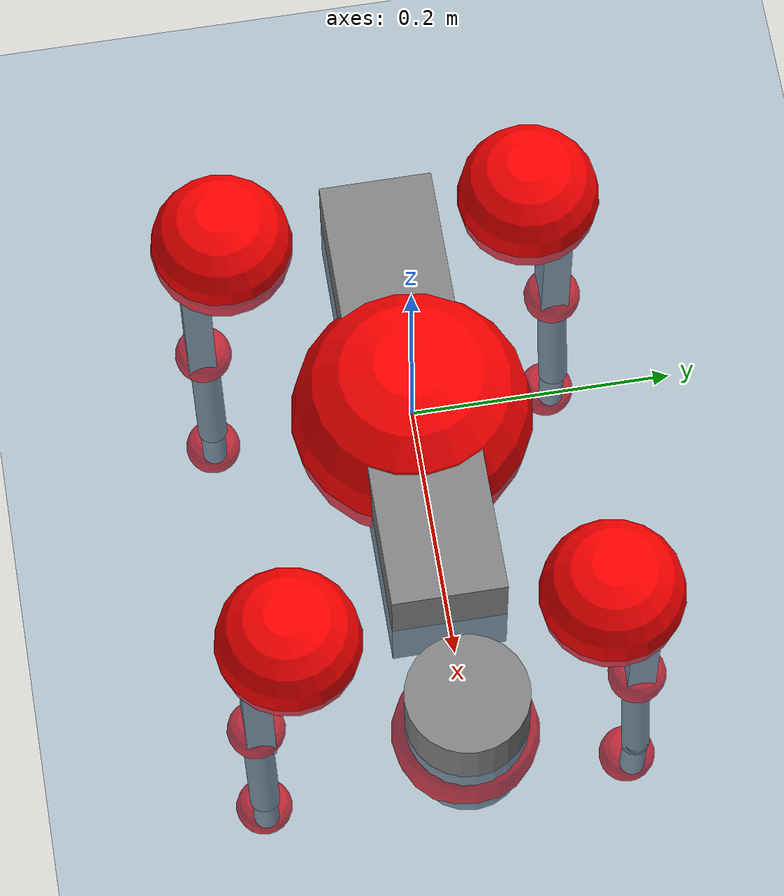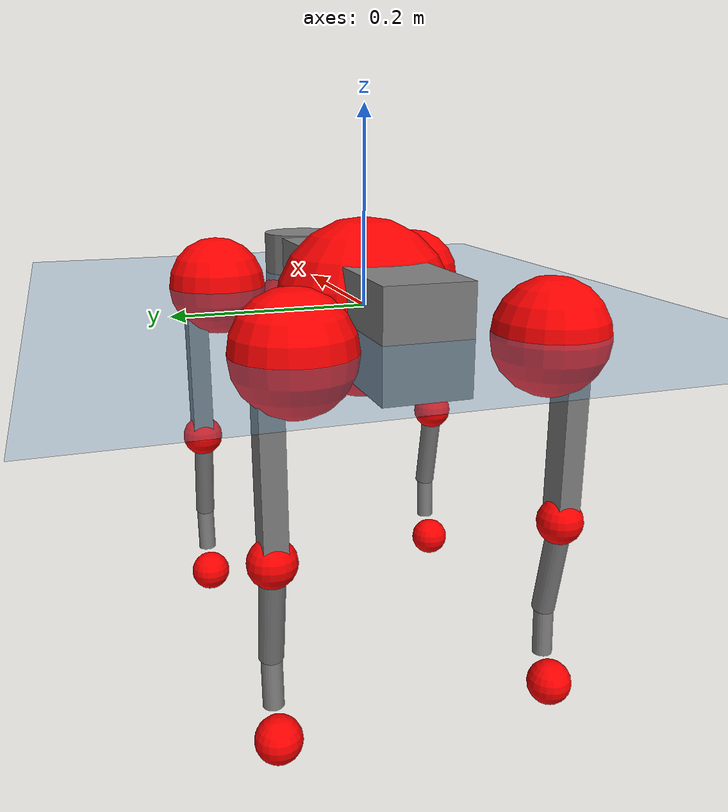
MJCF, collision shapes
<mujoco model="go2">
  <compiler angle="radian" assetdir="assets" balanceinertia="true" inertiafromgeom="false"/>

  <option timestep="0.005" density="1.2" viscosity="2e-05"/>

  <size nkey="1"/>

  <visual>
    <quality shadowsize="8192"/>
    <map shadowclip="0.5"/>
  </visual>

  <default>
    <default class="/">
      <geom contype="0" conaffinity="0" group="1" solref="-1000 -80"/>
      <site size="0.01 0.005 0.005" group="5"/>
      <general forcelimited="true" biastype="affine" gainprm="20" biasprm="0 -20 -0.5"/>
      <default class="go2">
        <joint armature="0.01" damping="0.01" frictionloss="0.2"/>
        <geom condim="1" margin="0.001"/>
        <default class="visual">
          <geom type="mesh" group="2"/>
        </default>
        <default class="collision">
          <geom group="3"/>
          <default class="foot">
            <geom size="0.022 0 0" condim="6" priority="1" friction="0.8 0.02 0.01" solimp="0.015 1 0.022"/>
          </default>
        </default>
        <default class="reward_collision_sphere">
          <geom group="5" rgba="1 0 0 1"/>
        </default>
      </default>
    </default>
  </default>

  <asset>
    <texture type="skybox" colorspace="auto" name="//unnamed_texture_0" builtin="gradient" rgb1="0.95 0.95 0.95" rgb2="0.95 0.95 0.95" width="100" height="600"/>
    <texture type="2d" colorspace="auto" name="texplane" builtin="checker" rgb1="0.345 0.575 0.748" rgb2="0.345 0.575 0.748" markrgb="1 1 1" width="512" height="512"/>
    <material name="MatPlane" class="/" texture="texplane" texuniform="true" texrepeat="2 2" specular="0.9"/>
    <material name="metal" class="/" rgba="0.9 0.95 0.95 1"/>
    <material name="black" class="/" rgba="0 0 0 1"/>
    <material name="white" class="/"/>
    <material name="gray" class="/" rgba="0.671705 0.692426 0.77427 1"/>
    <mesh name="base_0" class="/" file="base_0.obj"/>
    <mesh name="base_1" class="/" file="base_1.obj"/>
    <mesh name="base_2" class="/" file="base_2.obj"/>
    <mesh name="base_3" class="/" file="base_3.obj"/>
    <mesh name="base_4" class="/" file="base_4.obj"/>
    <mesh name="hip_0" class="/" file="hip_0.obj"/>
    <mesh name="hip_1" class="/" file="hip_1.obj"/>
    <mesh name="thigh_0" class="/" file="thigh_0.obj"/>
    <mesh name="thigh_1" class="/" file="thigh_1.obj"/>
    <mesh name="thigh_mirror_0" class="/" file="thigh_mirror_0.obj"/>
    <mesh name="thigh_mirror_1" class="/" file="thigh_mirror_1.obj"/>
    <mesh name="calf_0" class="/" file="calf_0.obj"/>
    <mesh name="calf_1" class="/" file="calf_1.obj"/>
    <mesh name="calf_mirror_0" class="/" file="calf_mirror_0.obj"/>
    <mesh name="calf_mirror_1" class="/" file="calf_mirror_1.obj"/>
    <mesh name="foot" class="/" file="foot.obj"/>
  </asset>

  <worldbody>
    <geom name="floor" class="/" size="100 100 0.125" type="plane" group="0" material="MatPlane"/>
    <light name="toplight_shadow" class="/" pos="0 0 5" dir="0.0990148 0.0990148 -0.990148" type="directional" ambient="0.04 0.04 0.04" diffuse="0.55 0.55 0.55" specular="0.12 0.12 0.12"/>
    <light name="toplight_fill" class="/" pos="0 0 5" dir="0.0990148 0.0990148 -0.990148" type="directional" castshadow="false" ambient="0.04 0.04 0.04" diffuse="0.3 0.3 0.3" specular="0.08 0.08 0.08"/>
    <body name="trunk" childclass="go2" pos="-0.00095985 5.26553e-05 -0.00247662" quat="0.999999 0.000116969 -0.000630083 0.00117841">
      <inertial pos="0.0172294 0.00267321 -0.00487015" quat="-0.0118227 0.708554 0.0017383 0.705555" mass="5.63342" diaginertia="0.0612928 0.131576 0.0122988"/>
      <joint name="//unnamed_joint_0" type="free" armature="0" damping="0" frictionloss="0"/>
      <geom name="//unnamed_geom_1" class="visual" material="black" mesh="base_0"/>
      <geom name="//unnamed_geom_2" class="visual" material="black" mesh="base_1"/>
      <geom name="//unnamed_geom_3" class="visual" material="black" mesh="base_2"/>
      <geom name="//unnamed_geom_4" class="visual" material="white" mesh="base_3"/>
      <geom name="//unnamed_geom_5" class="visual" material="gray" mesh="base_4"/>
      <geom name="trunk_1" class="collision" size="0.175909 0.0437201 0.0533058" type="box"/>
      <geom name="trunk_2" class="collision" size="0.0467595 0.0420835" pos="0.252923 0 0.00866166" type="cylinder"/>
      <geom name="trunk_3" class="collision" size="0.0439539" pos="0.260022 0 -0.05197"/>
      <geom name="//unnamed_geom_9" class="reward_collision_sphere" size="0.0935189"/>
      <geom name="//unnamed_geom_10" class="reward_collision_sphere" size="0.0561114" pos="0.248485 0 -0.0389775"/>
      <site name="imu" pos="-0.0278519 0.00974282 0.0231021" size="0.00935189"/>
      <camera name="track" pos="0 -2.10391 0" quat="0.707107 0.707107 0 0" mode="trackcom"/>
      <camera name="ego_camera" pos="0.276884 0 0.0389775" quat="-0.5 -0.5 0.5 0.5"/>
      <body name="FL_hip" pos="0.172002 0.0509755 0.0013729" quat="1 5.87302e-05 -7.55516e-05 -8.47812e-05">
        <inertial pos="-0.00749471 0.00275557 -0.00206973" quat="0.490573 0.50701 0.499343 0.502928" mass="0.541126" diaginertia="0.000490689 0.000753519 0.000228907"/>
        <joint name="FL_hip_joint" pos="0 0 0" axis="0.999979 0.00627906 -0.00138488" range="-1.04774 1.08281" armature="0.00925419" damping="0" frictionloss="0.202219"/>
        <geom name="//unnamed_geom_11" class="visual" material="metal" mesh="hip_0"/>
        <geom name="//unnamed_geom_12" class="visual" material="gray" mesh="hip_1"/>
        <geom name="//unnamed_geom_13" class="collision" size="0.0430187 0.0187038" pos="0 0.0841563 0" quat="0.707107 0.707107 0 0" type="cylinder"/>
        <geom name="//unnamed_geom_14" class="reward_collision_sphere" size="0.0561114" pos="0 0.0736368 0"/>
        <body name="FL_thigh" pos="-0.00354724 0.10165 0.00193609" quat="1 0.000183564 -8.5948e-05 -0.000104979">
          <inertial pos="-0.0023854 -0.0232424 -0.0285116" quat="0.82923 0.0849115 -0.0196811 0.552069" mass="0.899957" diaginertia="0.00312242 0.00726773 0.000399303"/>
          <joint name="FL_thigh_joint" pos="0 0 0" axis="-0.0014276 0.999997 0.00212182" stiffness="0.00957232" range="-1.60341 3.48398" armature="0.00827238" damping="0.0181561" frictionloss="0.187613"/>
          <geom name="//unnamed_geom_15" class="visual" material="metal" mesh="thigh_0"/>
          <geom name="//unnamed_geom_16" class="visual" material="gray" mesh="thigh_1"/>
          <geom name="//unnamed_geom_17" class="collision" size="0.0995977 0.0114561 0.0158982" pos="0 0 -0.0922467" quat="0.707107 0 0.707107 0" type="box"/>
          <body name="FL_calf" pos="0.00069538 -0.000386028 -0.185269" quat="1 9.02734e-05 -4.32297e-05 6.27126e-06">
            <inertial pos="0.00349214 -0.00325738 -0.122979" quat="0.710599 0.00131192 -0.00390717 0.703585" mass="0.197345" diaginertia="0.000788926 0.00186068 2.57559e-05"/>
            <joint name="FL_calf_joint" pos="0 0 0" axis="0.0151152 0.999884 -0.00192547" range="-2.76665 -0.795443" armature="0.00959453" damping="0" frictionloss="0.209303"/>
            <geom name="//unnamed_geom_18" class="visual" material="gray" mesh="calf_0"/>
            <geom name="//unnamed_geom_19" class="visual" material="black" mesh="calf_1"/>
            <geom name="FL_calf0" class="collision" size="0.0112223 0.0561114" pos="0.00709958 0 -0.05197" quat="0.994493 0 -0.104807 0" type="cylinder"/>
            <geom name="//unnamed_geom_21" class="collision" size="0.0102871 0.0303937" pos="0.017749 0 -0.128193" quat="0.999688 0 0.0249974 0" type="cylinder"/>
            <geom name="//unnamed_geom_22" class="visual" pos="0 0 -0.184493" quat="1 0 0 0" material="black" mesh="foot"/>
            <geom name="FL_foot" class="foot" size="0.0154639" pos="-0.0017749 0 -0.184493"/>
            <geom name="//unnamed_geom_24" class="reward_collision_sphere" size="0.0233797"/>
            <geom name="//unnamed_geom_25" class="reward_collision_sphere" size="0.0233797" pos="-0.0017749 0 -0.184493"/>
            <site name="FL_foot" class="foot" pos="-0.0017749 0 -0.184493" size="0.00935189"/>
          </body>
        </body>
      </body>
      <body name="FR_hip" pos="0.17148 -0.0478735 0.00215039" quat="0.999999 0.000312653 0.000744406 0.000968432">
        <inertial pos="-0.00476232 -0.00167676 0.000441741" quat="0.493099 0.515636 0.495557 0.495374" mass="0.572726" diaginertia="0.000481324 0.000764433 0.000231563"/>
        <joint name="FR_hip_joint" pos="0 0 0" axis="0.999955 0.0081945 0.00469708" range="-1.10127 1.01562" armature="0.00907219" damping="0" frictionloss="0.208431"/>
        <geom name="//unnamed_geom_26" class="visual" pos="0 1.61851e-09 6.94212e-08" quat="4.63268e-05 1 0 0" material="metal" mesh="hip_0"/>
        <geom name="//unnamed_geom_27" class="visual" pos="0 2.6238e-09 -1.71705e-07" quat="4.63268e-05 1 0 0" material="gray" mesh="hip_1"/>
        <geom name="//unnamed_geom_28" class="collision" size="0.0430187 0.0187038" pos="0 -0.0841563 0" quat="0.707107 0.707107 0 0" type="cylinder"/>
        <geom name="//unnamed_geom_29" class="reward_collision_sphere" size="0.0561114" pos="0 -0.0736368 0"/>
        <body name="FR_thigh" pos="-0.0004329 -0.102683 0.000420831" quat="1 -0.000373886 0.000430324 -0.000271648">
          <inertial pos="-0.0036017 0.0242262 -0.0284744" quat="0.553461 -0.0204375 0.0847676 0.828298" mass="0.974315" diaginertia="0.00328894 0.00726928 0.000433707"/>
          <joint name="FR_thigh_joint" pos="0 0 0" axis="0.00724227 -0.99996 -0.00531501" stiffness="0.0130418" range="-3.49263 1.53088" armature="0.00886937" damping="0.00629442" frictionloss="0.161684"/>
          <geom name="//unnamed_geom_30" class="visual" material="metal" mesh="thigh_mirror_0"/>
          <geom name="//unnamed_geom_31" class="visual" material="gray" mesh="thigh_mirror_1"/>
          <geom name="//unnamed_geom_32" class="collision" size="0.0995977 0.0114561 0.0158982" pos="0 0 -0.0922467" quat="0.707107 0 0.707107 0" type="box"/>
          <body name="FR_calf" pos="-0.00331076 -0.0017108 -0.182065" quat="1 0.000239507 0.000211659 0.000301933">
            <inertial pos="0.00650522 -0.00195435 -0.120056" quat="0.710455 -0.00726769 0.00646497 0.703675" mass="0.193269" diaginertia="0.000793908 0.00188466 2.43369e-05"/>
            <joint name="FR_calf_joint" pos="0 0 0" axis="0.000542699 -0.999999 0.00141744" stiffness="0.00134002" range="0.826813 2.73263" armature="0.00917108" damping="0" frictionloss="0.174401"/>
            <geom name="//unnamed_geom_33" class="visual" material="gray" mesh="calf_mirror_0"/>
            <geom name="//unnamed_geom_34" class="visual" material="black" mesh="calf_mirror_1"/>
            <geom name="FR_calf0" class="collision" size="0.0121575 0.0561114" pos="0.00887448 0 -0.05197" quat="0.995004 0 -0.0998334 0" type="cylinder"/>
            <geom name="//unnamed_geom_36" class="collision" size="0.0102871 0.0303937" pos="0.017749 0 -0.128193" quat="0.999688 0 0.0249974 0" type="cylinder"/>
            <geom name="//unnamed_geom_37" class="visual" pos="0 0 -0.184493" quat="1 0 0 0" material="black" mesh="foot"/>
            <geom name="FR_foot" class="foot" size="0.0206273" pos="-0.0017749 0 -0.184493"/>
            <geom name="//unnamed_geom_39" class="reward_collision_sphere" size="0.0233797"/>
            <geom name="//unnamed_geom_40" class="reward_collision_sphere" size="0.0233797" pos="-0.0017749 0 -0.184493"/>
            <site name="FR_foot" class="foot" pos="-0.0017749 0 -0.184493" size="0.00935189"/>
          </body>
        </body>
      </body>
      <body name="RL_hip" pos="-0.171646 0.0468315 0.000980493" quat="1 -0.000311283 0.000571723 5.59166e-05">
        <inertial pos="0.00493518 -0.000373879 -0.00234681" quat="0.506739 0.498006 0.494834 0.500345" mass="0.546738" diaginertia="0.0004672 0.000755177 0.0002207"/>
        <joint name="RL_hip_joint" pos="0 0 0" axis="-0.999978 -0.00470342 0.00458189" range="-1.10472 1.09925" armature="0.0106281" damping="0.0153054" frictionloss="0.190025"/>
        <geom name="//unnamed_geom_41" class="visual" pos="-1.85397e-10 0 -3.63421e-08" quat="4.63268e-05 0 1 0" material="metal" mesh="hip_0"/>
        <geom name="//unnamed_geom_42" class="visual" pos="-3.00551e-10 0 -3.22302e-08" quat="4.63268e-05 0 1 0" material="gray" mesh="hip_1"/>
        <geom name="//unnamed_geom_43" class="collision" size="0.0430187 0.0187038" pos="0 0.0841563 0" quat="0.707107 0.707107 0 0" type="cylinder"/>
        <geom name="//unnamed_geom_44" class="reward_collision_sphere" size="0.0561114" pos="0 0.0736368 0"/>
        <body name="RL_thigh" pos="-0.00124052 0.0978988 -0.000182187" quat="0.999999 -0.000806176 0.000761127 0.000717287">
          <inertial pos="-0.00102816 -0.025809 -0.0307499" quat="0.829557 0.0847834 -0.0201166 0.551582" mass="0.96571" diaginertia="0.00347317 0.0076211 0.000453097"/>
          <joint name="RL_thigh_joint" pos="0 0 0" axis="0.0160318 0.999865 0.00359212" stiffness="0.0116122" range="-0.568548 4.54062" armature="0.00962167" damping="0.00562857" frictionloss="0.19727"/>
          <geom name="//unnamed_geom_45" class="visual" material="metal" mesh="thigh_0"/>
          <geom name="//unnamed_geom_46" class="visual" material="gray" mesh="thigh_1"/>
          <geom name="//unnamed_geom_47" class="collision" size="0.0995977 0.0114561 0.0158982" pos="0 0 -0.0922467" quat="0.707107 0 0.707107 0" type="box"/>
          <body name="RL_calf" pos="-0.00159845 0.000952837 -0.187617" quat="0.999999 0.00108592 0.000310445 0.000595992">
            <inertial pos="0.00302337 0.00206273 -0.124619" quat="0.707926 0.0147021 -0.00488579 0.706117" mass="0.191318" diaginertia="0.000791652 0.0017911 2.53554e-05"/>
            <joint name="RL_calf_joint" pos="0 0 0" axis="-0.00802899 0.999968 -0.000425973" stiffness="0.00525296" range="-2.74295 -0.878649" armature="0.01067" damping="0" frictionloss="0.190125"/>
            <geom name="//unnamed_geom_48" class="visual" material="gray" mesh="calf_0"/>
            <geom name="//unnamed_geom_49" class="visual" material="black" mesh="calf_1"/>
            <geom name="RL_calf0" class="collision" size="0.0121575 0.0561114" pos="0.00887448 0 -0.05197" quat="0.995004 0 -0.0998334 0" type="cylinder"/>
            <geom name="//unnamed_geom_51" class="collision" size="0.0102871 0.0303937" pos="0.017749 0 -0.128193" quat="0.999688 0 0.0249974 0" type="cylinder"/>
            <geom name="//unnamed_geom_52" class="visual" pos="0 0 -0.184493" quat="1 0 0 0" material="black" mesh="foot"/>
            <geom name="RL_foot" class="foot" size="0.01977" pos="-0.0017749 0 -0.184493"/>
            <geom name="//unnamed_geom_54" class="reward_collision_sphere" size="0.0233797"/>
            <geom name="//unnamed_geom_55" class="reward_collision_sphere" size="0.0233797" pos="-0.0017749 0 -0.184493"/>
            <site name="RL_foot" class="foot" pos="-0.0017749 0 -0.184493" size="0.00935189"/>
          </body>
        </body>
      </body>
      <body name="RR_hip" pos="-0.169079 -0.0494555 -0.00299167" quat="1 0.000192237 0.000205295 0.000464048">
        <inertial pos="0.00193399 -0.003996 -0.00100169" quat="0.507987 0.486751 0.497815 0.507152" mass="0.556708" diaginertia="0.000518165 0.000796833 0.000246146"/>
        <joint name="RR_hip_joint" pos="0 0 0" axis="-0.999934 -0.0062126 0.00970122" stiffness="0.000354641" range="-1.06883 1.04751" armature="0.00927861" damping="0.0079503" frictionloss="0.207883"/>
        <geom name="//unnamed_geom_56" class="visual" pos="1.91092e-10 1.61851e-09 -1.05763e-07" quat="2.14617e-09 4.63268e-05 4.63268e-05 -1" material="metal" mesh="hip_0"/>
        <geom name="//unnamed_geom_57" class="visual" pos="2.86464e-10 2.6238e-09 1.39475e-07" quat="2.14617e-09 4.63268e-05 4.63268e-05 -1" material="gray" mesh="hip_1"/>
        <geom name="//unnamed_geom_58" class="collision" size="0.0430187 0.0187038" pos="0 -0.0841563 0" quat="0.707107 0.707107 0 0" type="cylinder"/>
        <geom name="//unnamed_geom_59" class="reward_collision_sphere" size="0.0561114" pos="0 -0.0736368 0"/>
        <body name="RR_thigh" pos="0.00146696 -0.0995192 -0.00221032" quat="1 -0.000589298 0.000166099 -9.51162e-05">
          <inertial pos="-0.00118166 0.0224756 -0.0296734" quat="0.553332 -0.0315046 0.0837674 0.828139" mass="0.917235" diaginertia="0.00339729 0.00750475 0.000425119"/>
          <joint name="RR_thigh_joint" pos="0 0 0" axis="0.00505481 -0.999892 -0.0138059" range="-4.54105 0.470046" armature="0.00930966" damping="0.00226044" frictionloss="0.192499"/>
          <geom name="//unnamed_geom_60" class="visual" material="metal" mesh="thigh_mirror_0"/>
          <geom name="//unnamed_geom_61" class="visual" material="gray" mesh="thigh_mirror_1"/>
          <geom name="//unnamed_geom_62" class="collision" size="0.0995977 0.0114561 0.0158982" pos="0 0 -0.0922467" quat="0.707107 0 0.707107 0" type="box"/>
          <body name="RR_calf" pos="-0.0028063 0.00223722 -0.186787" quat="0.999999 -0.000437773 6.93734e-06 -0.000957954">
            <inertial pos="0.00520607 0.00124056 -0.123262" quat="0.702564 0.00169984 0.0135905 0.711489" mass="0.205104" diaginertia="0.000852808 0.00197313 2.56914e-05"/>
            <joint name="RR_calf_joint" pos="0 0 0" axis="0.0110222 -0.999905 0.00826463" range="0.890872 2.74155" armature="0.00945323" damping="0.00288589" frictionloss="0.191443"/>
            <geom name="//unnamed_geom_63" class="visual" material="gray" mesh="calf_mirror_0"/>
            <geom name="//unnamed_geom_64" class="visual" material="black" mesh="calf_mirror_1"/>
            <geom name="RR_calf0" class="collision" size="0.0121575 0.0561114" pos="0.00887448 0 -0.05197" quat="0.995004 0 -0.0998334 0" type="cylinder"/>
            <geom name="//unnamed_geom_66" class="collision" size="0.0102871 0.0303937" pos="0.017749 0 -0.128193" quat="0.999688 0 0.0249974 0" type="cylinder"/>
            <geom name="//unnamed_geom_67" class="visual" pos="0 0 -0.184493" quat="1 0 0 0" material="black" mesh="foot"/>
            <geom name="RR_foot" class="foot" size="0.0232783" pos="-0.0017749 0 -0.184493"/>
            <geom name="//unnamed_geom_69" class="reward_collision_sphere" size="0.0233797"/>
            <geom name="//unnamed_geom_70" class="reward_collision_sphere" size="0.0233797" pos="-0.0017749 0 -0.184493"/>
            <site name="RR_foot" class="foot" pos="-0.0017749 0 -0.184493" size="0.00935189"/>
          </body>
        </body>
      </body>
    </body>
  </worldbody>

  <contact>
    <pair class="/" geom1="floor" geom2="FL_foot" name="//unnamed_contact_0"/>
    <pair class="/" geom1="floor" geom2="FR_foot" name="//unnamed_contact_1"/>
    <pair class="/" geom1="floor" geom2="RL_foot" name="//unnamed_contact_2"/>
    <pair class="/" geom1="floor" geom2="RR_foot" name="//unnamed_contact_3"/>
  </contact>

  <actuator>
    <general name="FL_hip" class="/" joint="FL_hip_joint" forcerange="-21.7073 21.7073" gainprm="18.3323" biasprm="0 -18.3323 -0.471728"/>
    <general name="FL_thigh" class="/" joint="FL_thigh_joint" forcerange="-21.4427 21.4427" gainprm="18.3323" biasprm="0 -18.3323 -0.471728"/>
    <general name="FL_calf" class="/" joint="FL_calf_joint" forcerange="-45.4344 45.4344" gainprm="18.3323" biasprm="0 -18.3323 -0.471728"/>
    <general name="FR_hip" class="/" joint="FR_hip_joint" forcerange="-23.022 23.022" gainprm="18.3323" biasprm="0 -18.3323 -0.471728"/>
    <general name="FR_thigh" class="/" joint="FR_thigh_joint" forcerange="-23.5905 23.5905" gainprm="18.3323" biasprm="0 -18.3323 -0.471728"/>
    <general name="FR_calf" class="/" joint="FR_calf_joint" forcerange="-41.5019 41.5019" gainprm="18.3323" biasprm="0 -18.3323 -0.471728"/>
    <general name="RL_hip" class="/" joint="RL_hip_joint" forcerange="-21.8108 21.8108" gainprm="18.3323" biasprm="0 -18.3323 -0.471728"/>
    <general name="RL_thigh" class="/" joint="RL_thigh_joint" forcerange="-20.104 20.104" gainprm="18.3323" biasprm="0 -18.3323 -0.471728"/>
    <general name="RL_calf" class="/" joint="RL_calf_joint" forcerange="-46.9965 46.9965" gainprm="18.3323" biasprm="0 -18.3323 -0.471728"/>
    <general name="RR_hip" class="/" joint="RR_hip_joint" forcerange="-22.3499 22.3499" gainprm="18.3323" biasprm="0 -18.3323 -0.471728"/>
    <general name="RR_thigh" class="/" joint="RR_thigh_joint" forcerange="-21.9663 21.9663" gainprm="18.3323" biasprm="0 -18.3323 -0.471728"/>
    <general name="RR_calf" class="/" joint="RR_calf_joint" forcerange="-45.9977 45.9977" gainprm="18.3323" biasprm="0 -18.3323 -0.471728"/>
  </actuator>

  <sensor>
    <gyro site="imu" name="imu_angular_velocity"/>
    <velocimeter site="imu" name="imu_linear_velocity"/>
    <framelinvel objtype="site" objname="FL_foot" name="FL_foot_global_linear_velocity"/>
    <framelinvel objtype="site" objname="FR_foot" name="FR_foot_global_linear_velocity"/>
    <framelinvel objtype="site" objname="RL_foot" name="RL_foot_global_linear_velocity"/>
    <framelinvel objtype="site" objname="RR_foot" name="RR_foot_global_linear_velocity"/>
  </sensor>

  <keyframe>
    <key name="home" qpos="0 0 0.325 1 0 0 0 0.1 0.8 -1.5 -0.1 -0.8 1.5 -0.1 0.8 -1.5 0.1 -0.8 1.5"/>
  </keyframe>
</mujoco>
